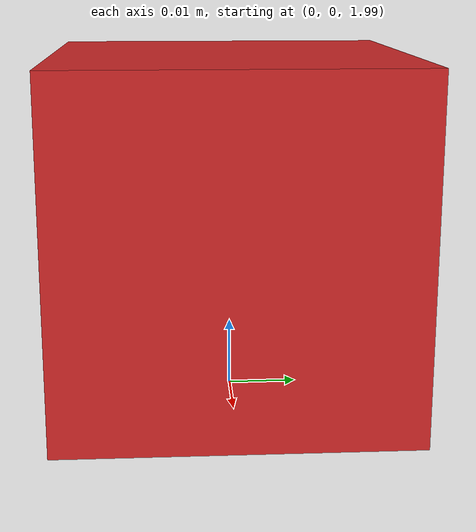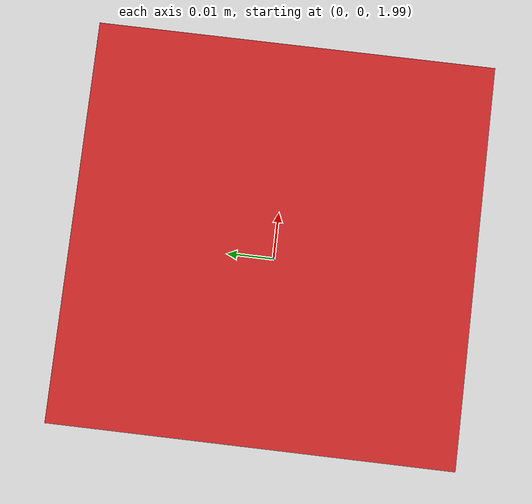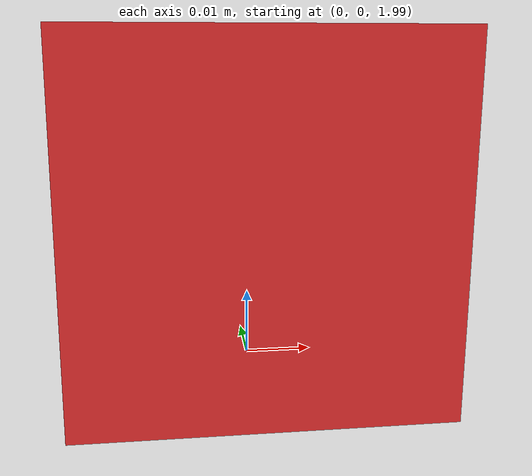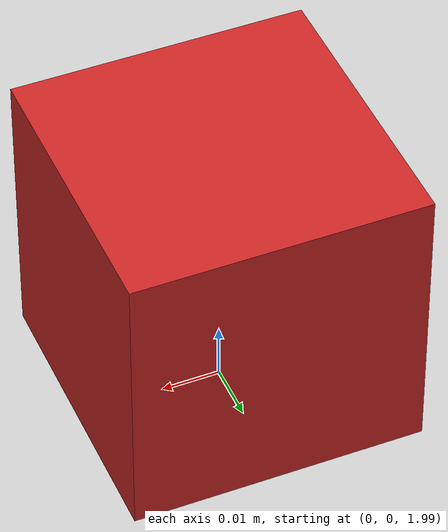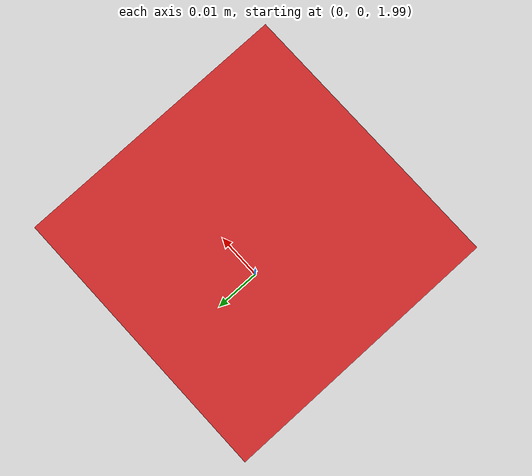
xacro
<?xml version="1.0"?>
<robot xmlns:xacro="http://www.ros.org/wiki/xacro" name="camera">

  <xacro:include filename="$(find world_sim)/camera_urdf/camera.plugins.xacro" />

  <xacro:property name="camera_size" value="0.02"/>
  <xacro:property name="camera_origin_x" value="0"/>
  <xacro:property name="camera_origin_y" value="0"/>
  <xacro:property name="camera_origin_z" value="2.015"/>
  <xacro:property name="camera_link" value="0.05" /> <!-- Size of square 'camera' box -->
  <link name="world"/>
  <!--Camera-->
  <joint name="camera_joint" type="fixed">
    <axis xyz="0 0 0" />
    <origin xyz="${camera_origin_x} ${camera_origin_y} ${camera_origin_z}" rpy="0 1.57079 0"/>
    <parent link="world"/>
    <child link="camera_link"/>
  </joint>

  <!-- Camera -->
  <link name="camera_link">
    <collision>
      <origin xyz="0 0 0" rpy="0 0 0"/>
      <geometry>
    <box size="${camera_link} ${camera_link} ${camera_link}"/>
      </geometry>
    </collision>

    <visual>
      <origin xyz="0 0 0" rpy="0 0 0"/>
      <geometry>
    <box size="${camera_link} ${camera_link} ${camera_link}"/>
      </geometry>
      <material name="red"/>
    </visual>

    <inertial>
      <mass value="1e-5" />
      <origin xyz="0 0 0" rpy="0 0 0"/>
      <inertia ixx="1e-6" ixy="0" ixz="0" iyy="1e-6" iyz="0" izz="1e-6" />
    </inertial>
  </link>

</robot>
